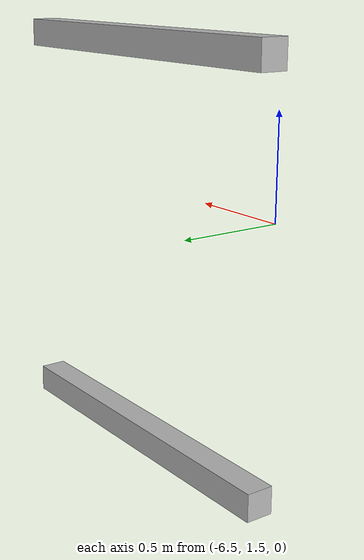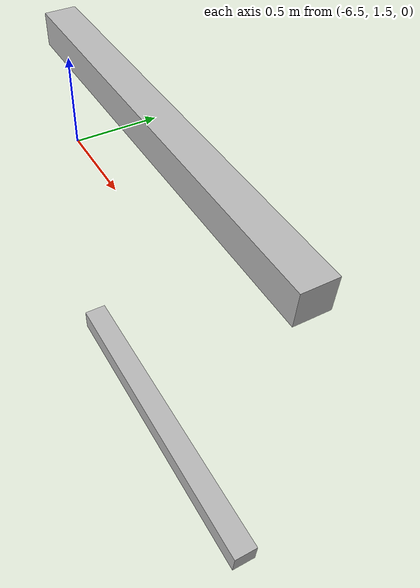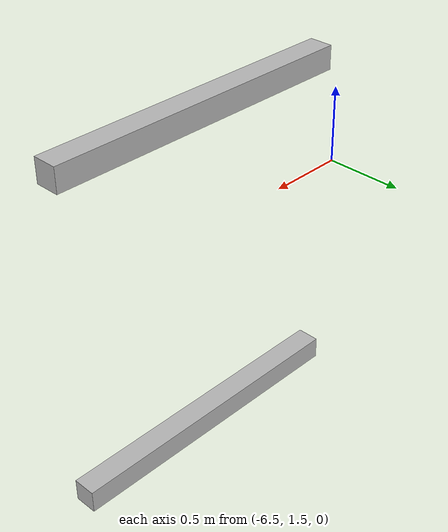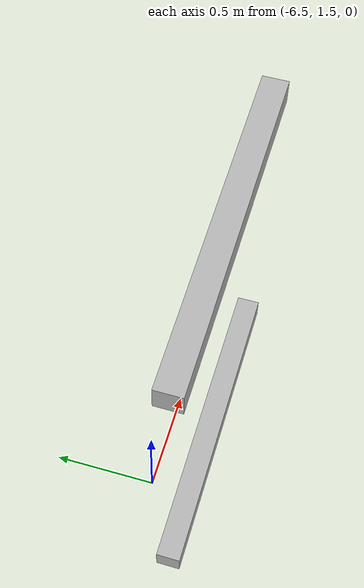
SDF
<sdf version="1.7">
 <world name="default">
  <model name="orthogonal_747_2.000.15_TS">
   <static>1</static>
   <link name="x_link_0_3_0">
    <inertial>
     <mass>1</mass>
     <inertia>
      <ixx>0.166667</ixx>
      <ixy>0</ixy>
      <ixz>0</ixz>
      <iyy>0.166667</iyy>
      <iyz>0</iyz>
      <izz>0.166667</izz>
     </inertia>
    </inertial>
    <pose>1.075 6.45 1.075 0 -0 0</pose>
    <visual name="visual_0">
     <laser_retro>484</laser_retro>
     <geometry><box><size>2 1e-06 0.15</size></box></geometry>
     <material>
      <script><name>Gazebo/Grey</name><uri>file://media/materials/scripts/gazebo.material</uri></script>
      <shader type="pixel"><normal_map>__default__</normal_map></shader>
      <ambient>0.678 0.498 0.659 1</ambient>
      <diffuse>0.7 0.7 0.7 1</diffuse>
      <specular>0.01 0.01 0.01 1</specular>
      <emissive>0 0 0 1</emissive>
     </material>
     <pose>0 -0.075 0 0 -0 0</pose>
     <transparency>1</transparency>
    </visual>
    <visual name="visual_1">
     <laser_retro>485</laser_retro>
     <geometry><box><size>2 1e-06 0.15</size></box></geometry>
     <material>
      <script><name>Gazebo/Grey</name><uri>file://media/materials/scripts/gazebo.material</uri></script>
      <shader type="pixel"><normal_map>__default__</normal_map></shader>
      <ambient>0.447 0.624 0.812 1</ambient>
      <diffuse>0.7 0.7 0.7 1</diffuse>
      <specular>0.01 0.01 0.01 1</specular>
      <emissive>0 0 0 1</emissive>
     </material>
     <pose>0 0.075 0 0 -0 0</pose>
     <transparency>1</transparency>
    </visual>
    <visual name="visual_2">
     <laser_retro>486</laser_retro>
     <geometry><box><size>2 0.15 1e-06</size></box></geometry>
     <material>
      <script><name>Gazebo/Grey</name><uri>file://media/materials/scripts/gazebo.material</uri></script>
      <shader type="pixel"><normal_map>__default__</normal_map></shader>
      <ambient>0.988 0.686 0.243 1</ambient>
      <diffuse>0.7 0.7 0.7 1</diffuse>
      <specular>0.01 0.01 0.01 1</specular>
      <emissive>0 0 0 1</emissive>
     </material>
     <pose>0 0 -0.075 0 -0 0</pose>
     <transparency>1</transparency>
    </visual>
    <visual name="visual_3">
     <laser_retro>487</laser_retro>
     <geometry><box><size>1e-06 0.15 0.15</size></box></geometry>
     <material>
      <script><name>Gazebo/Grey</name><uri>file://media/materials/scripts/gazebo.material</uri></script>
      <shader type="pixel"><normal_map>__default__</normal_map></shader>
      <ambient>0.988 0.914 0.31 1</ambient>
      <diffuse>0.7 0.7 0.7 1</diffuse>
      <specular>0.01 0.01 0.01 1</specular>
      <emissive>0 0 0 1</emissive>
     </material>
     <pose>1 0 0 0 -0 0</pose>
     <transparency>1</transparency>
    </visual>
    <visual name="visual_4">
     <laser_retro>488</laser_retro>
     <geometry><box><size>2 0.15 1e-06</size></box></geometry>
     <material>
      <script><name>Gazebo/Grey</name><uri>file://media/materials/scripts/gazebo.material</uri></script>
      <shader type="pixel"><normal_map>__default__</normal_map></shader>
      <ambient>0.937 0.161 0.161 1</ambient>
      <diffuse>0.7 0.7 0.7 1</diffuse>
      <specular>0.01 0.01 0.01 1</specular>
      <emissive>0 0 0 1</emissive>
     </material>
     <pose>0 0 0.075 0 -0 0</pose>
     <transparency>1</transparency>
    </visual>
    <visual name="visual_5">
     <laser_retro>489</laser_retro>
     <geometry><box><size>1e-06 0.15 0.15</size></box></geometry>
     <material>
      <script><name>Gazebo/Grey</name><uri>file://media/materials/scripts/gazebo.material</uri></script>
      <shader type="pixel"><normal_map>__default__</normal_map></shader>
      <ambient>0.541 0.886 0.204 1</ambient>
      <diffuse>0.7 0.7 0.7 1</diffuse>
      <specular>0.01 0.01 0.01 1</specular>
      <emissive>0 0 0 1</emissive>
     </material>
     <pose>-1 0 0 0 -0 0</pose>
     <transparency>1</transparency>
    </visual>
    <visual name="visual_texture">
     <geometry><box><size>1.9998 0.149985 0.149985</size></box></geometry>
     <material>
      <script>
       <uri>model://BASE_MODELS/simple_block_v2_textured/materials/scripts</uri>
       <uri>model://BASE_MODELS/simple_block_v2_textured/materials/textures</uri>
       <name>metal</name>
      </script>
     </material>
     <laser_retro>490</laser_retro>
    </visual>
    <collision name="collision">
     <geometry><box><size>2 0.15 0.15</size></box></geometry>
     <surface>
      <friction>
       <ode><mu>1</mu><mu2>1</mu2><fdir1>0 0 0</fdir1><slip1>0</slip1><slip2>0</slip2></ode>
       <torsional>
        <coefficient>1</coefficient>
        <patch_radius>0</patch_radius>
        <surface_radius>0</surface_radius>
        <use_patch_radius>1</use_patch_radius>
        <ode><slip>0</slip></ode>
       </torsional>
      </friction>
      <bounce><restitution_coefficient>0</restitution_coefficient><threshold>1e+06</threshold></bounce>
      <contact>
       <collide_without_contact>0</collide_without_contact>
       <collide_without_contact_bitmask>1</collide_without_contact_bitmask>
       <collide_bitmask>1</collide_bitmask>
       <ode>
        <soft_cfm>0</soft_cfm>
        <soft_erp>0.2</soft_erp>
        <kp>1e+13</kp>
        <kd>1</kd>
        <max_vel>0.01</max_vel>
        <min_depth>0</min_depth>
       </ode>
       <bullet>
        <split_impulse>1</split_impulse>
        <split_impulse_penetration_threshold>-0.01</split_impulse_penetration_threshold>
        <soft_cfm>0</soft_cfm>
        <soft_erp>0.2</soft_erp>
        <kp>1e+13</kp>
        <kd>1</kd>
       </bullet>
      </contact>
     </surface>
    </collision>
   </link>
   <link name="x_link_1_3_0">
    <inertial>
     <mass>1</mass>
     <inertia>
      <ixx>0.166667</ixx>
      <ixy>0</ixy>
      <ixz>0</ixz>
      <iyy>0.166667</iyy>
      <iyz>0</iyz>
      <izz>0.166667</izz>
     </inertia>
    </inertial>
    <pose>1.075 6.45 3.225 0 -0 0</pose>
    <visual name="visual_0">
     <laser_retro>1317</laser_retro>
     <geometry><box><size>2 1e-06 0.15</size></box></geometry>
     <material>
      <script><name>Gazebo/Grey</name><uri>file://media/materials/scripts/gazebo.material</uri></script>
      <shader type="pixel"><normal_map>__default__</normal_map></shader>
      <ambient>0.678 0.498 0.659 1</ambient>
      <diffuse>0.7 0.7 0.7 1</diffuse>
      <specular>0.01 0.01 0.01 1</specular>
      <emissive>0 0 0 1</emissive>
     </material>
     <pose>0 -0.075 0 0 -0 0</pose>
     <transparency>1</transparency>
    </visual>
    <visual name="visual_1">
     <laser_retro>1318</laser_retro>
     <geometry><box><size>2 1e-06 0.15</size></box></geometry>
     <material>
      <script><name>Gazebo/Grey</name><uri>file://media/materials/scripts/gazebo.material</uri></script>
      <shader type="pixel"><normal_map>__default__</normal_map></shader>
      <ambient>0.447 0.624 0.812 1</ambient>
      <diffuse>0.7 0.7 0.7 1</diffuse>
      <specular>0.01 0.01 0.01 1</specular>
      <emissive>0 0 0 1</emissive>
     </material>
     <pose>0 0.075 0 0 -0 0</pose>
     <transparency>1</transparency>
    </visual>
    <visual name="visual_2">
     <laser_retro>1319</laser_retro>
     <geometry><box><size>2 0.15 1e-06</size></box></geometry>
     <material>
      <script><name>Gazebo/Grey</name><uri>file://media/materials/scripts/gazebo.material</uri></script>
      <shader type="pixel"><normal_map>__default__</normal_map></shader>
      <ambient>0.988 0.686 0.243 1</ambient>
      <diffuse>0.7 0.7 0.7 1</diffuse>
      <specular>0.01 0.01 0.01 1</specular>
      <emissive>0 0 0 1</emissive>
     </material>
     <pose>0 0 -0.075 0 -0 0</pose>
     <transparency>1</transparency>
    </visual>
    <visual name="visual_3">
     <laser_retro>1320</laser_retro>
     <geometry><box><size>1e-06 0.15 0.15</size></box></geometry>
     <material>
      <script><name>Gazebo/Grey</name><uri>file://media/materials/scripts/gazebo.material</uri></script>
      <shader type="pixel"><normal_map>__default__</normal_map></shader>
      <ambient>0.988 0.914 0.31 1</ambient>
      <diffuse>0.7 0.7 0.7 1</diffuse>
      <specular>0.01 0.01 0.01 1</specular>
      <emissive>0 0 0 1</emissive>
     </material>
     <pose>1 0 0 0 -0 0</pose>
     <transparency>1</transparency>
    </visual>
    <visual name="visual_4">
     <laser_retro>1321</laser_retro>
     <geometry><box><size>2 0.15 1e-06</size></box></geometry>
     <material>
      <script><name>Gazebo/Grey</name><uri>file://media/materials/scripts/gazebo.material</uri></script>
      <shader type="pixel"><normal_map>__default__</normal_map></shader>
      <ambient>0.937 0.161 0.161 1</ambient>
      <diffuse>0.7 0.7 0.7 1</diffuse>
      <specular>0.01 0.01 0.01 1</specular>
      <emissive>0 0 0 1</emissive>
     </material>
     <pose>0 0 0.075 0 -0 0</pose>
     <transparency>1</transparency>
    </visual>
    <visual name="visual_5">
     <laser_retro>1322</laser_retro>
     <geometry><box><size>1e-06 0.15 0.15</size></box></geometry>
     <material>
      <script><name>Gazebo/Grey</name><uri>file://media/materials/scripts/gazebo.material</uri></script>
      <shader type="pixel"><normal_map>__default__</normal_map></shader>
      <ambient>0.541 0.886 0.204 1</ambient>
      <diffuse>0.7 0.7 0.7 1</diffuse>
      <specular>0.01 0.01 0.01 1</specular>
      <emissive>0 0 0 1</emissive>
     </material>
     <pose>-1 0 0 0 -0 0</pose>
     <transparency>1</transparency>
    </visual>
    <visual name="visual_texture">
     <geometry><box><size>1.9998 0.149985 0.149985</size></box></geometry>
     <material>
      <script>
       <uri>model://BASE_MODELS/simple_block_v2_textured/materials/scripts</uri>
       <uri>model://BASE_MODELS/simple_block_v2_textured/materials/textures</uri>
       <name>metal</name>
      </script>
     </material>
     <laser_retro>1323</laser_retro>
    </visual>
    <collision name="collision">
     <geometry><box><size>2 0.15 0.15</size></box></geometry>
     <surface>
      <friction>
       <ode><mu>1</mu><mu2>1</mu2><fdir1>0 0 0</fdir1><slip1>0</slip1><slip2>0</slip2></ode>
       <torsional>
        <coefficient>1</coefficient>
        <patch_radius>0</patch_radius>
        <surface_radius>0</surface_radius>
        <use_patch_radius>1</use_patch_radius>
        <ode><slip>0</slip></ode>
       </torsional>
      </friction>
      <bounce><restitution_coefficient>0</restitution_coefficient><threshold>1e+06</threshold></bounce>
      <contact>
       <collide_without_contact>0</collide_without_contact>
       <collide_without_contact_bitmask>1</collide_without_contact_bitmask>
       <collide_bitmask>1</collide_bitmask>
       <ode>
        <soft_cfm>0</soft_cfm>
        <soft_erp>0.2</soft_erp>
        <kp>1e+13</kp>
        <kd>1</kd>
        <max_vel>0.01</max_vel>
        <min_depth>0</min_depth>
       </ode>
       <bullet>
        <split_impulse>1</split_impulse>
        <split_impulse_penetration_threshold>-0.01</split_impulse_penetration_threshold>
        <soft_cfm>0</soft_cfm>
        <soft_erp>0.2</soft_erp>
        <kp>1e+13</kp>
        <kd>1</kd>
       </bullet>
      </contact>
     </surface>
    </collision>
   </link>
   <pose>-6.47624 -5 -2.5 0 -0 0</pose>
  </model>
 </world>
</sdf>
